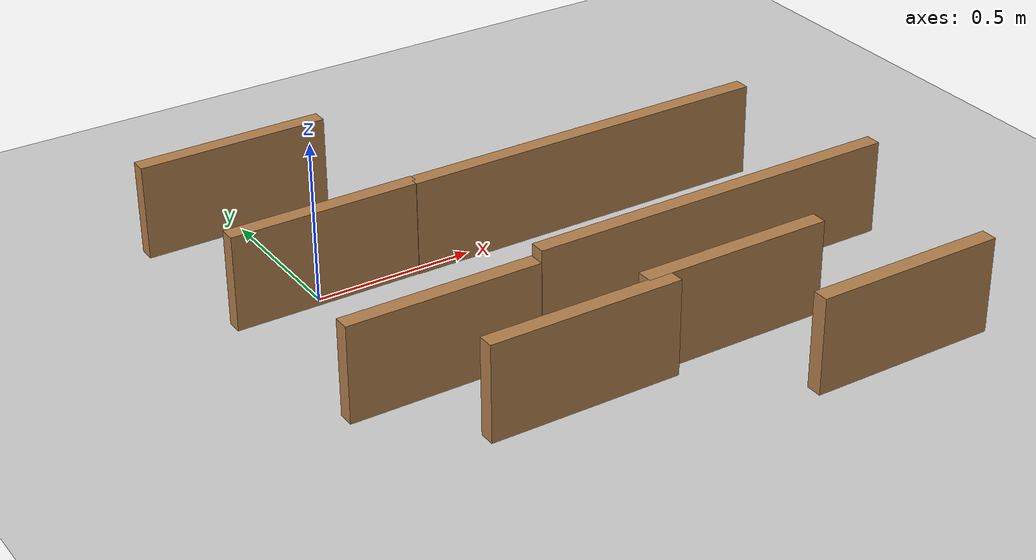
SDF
<sdf version="1.7">
 <world name="default">
  <light name="sun" type="directional">
   <pose>0 0 10 0 -0 0</pose>
   <diffuse>0.8 0.8 0.8 1</diffuse>
   <specular>0.2 0.2 0.2 1</specular>
   <attenuation>
    <range>1000</range>
    <constant>0.9</constant>
    <linear>0.01</linear>
    <quadratic>0.001</quadratic>
   </attenuation>
   <direction>-0.5 0.1 -0.9</direction>
   <spot><inner_angle>0</inner_angle><outer_angle>0</outer_angle><falloff>0</falloff></spot>
  </light>
  <model name="ground_plane">
   <static>1</static>
   <link name="link">
    <collision name="collision">
     <geometry><plane><normal>0 0 1</normal><size>100 100</size></plane></geometry>
     <surface>
      <contact><collide_bitmask>65535</collide_bitmask></contact>
      <friction><ode><mu>100</mu><mu2>50</mu2></ode></friction>
     </surface>
    </collision>
    <visual name="visual">
     <cast_shadows>0</cast_shadows>
     <geometry><plane><normal>0 0 1</normal><size>100 100</size></plane></geometry>
     <material>
      <script><uri>file://media/materials/scripts/gazebo.material</uri><name>Gazebo/Grey</name></script>
     </material>
    </visual>
   </link>
  </model>
  <gravity>0 0 -9.8</gravity>
  <magnetic_field>6e-06 2.3e-05 -4.2e-05</magnetic_field>
  <atmosphere type="adiabatic"/>
  <physics type="ode">
   <max_step_size>0.001</max_step_size>
   <real_time_factor>1</real_time_factor>
   <real_time_update_rate>1000</real_time_update_rate>
  </physics>
  <scene><ambient>0.4 0.4 0.4 1</ambient><background>0.7 0.7 0.7 1</background><shadows>1</shadows></scene>
  <audio><device>default</device></audio>
  <spherical_coordinates>
   <surface_model>EARTH_WGS84</surface_model>
   <latitude_deg>0</latitude_deg>
   <longitude_deg>0</longitude_deg>
   <elevation>0</elevation>
   <heading_deg>0</heading_deg>
  </spherical_coordinates>
  <model name="wall60cm_0">
   <pose>0.027917 -0.004563 0 0 -0 0</pose>
   <link name="Wall_4">
    <collision name="Wall_4_Collision">
     <geometry><box><size>0.6 0.05 0.3</size></box></geometry>
     <pose>0 0 0.15 0 -0 0</pose>
    </collision>
    <visual name="Wall_4_Visual">
     <pose>0 0 0.15 0 -0 0</pose>
     <geometry><box><size>0.6 0.05 0.3</size></box></geometry>
     <material>
      <script><uri>file://media/materials/scripts/gazebo.material</uri><name>Gazebo/Wood</name></script>
      <ambient>1 1 1 1</ambient>
     </material>
     <meta><layer>0</layer></meta>
    </visual>
   </link>
   <static>1</static>
  </model>
  <model name="wall120cm">
   <pose>0.916318 -0.006935 0 0 -0 0</pose>
   <link name="Wall_11">
    <collision name="Wall_11_Collision">
     <geometry><box><size>1.2 0.05 0.3</size></box></geometry>
     <pose>0 0 0.15 0 -0 0</pose>
    </collision>
    <visual name="Wall_11_Visual">
     <pose>0 0 0.15 0 -0 0</pose>
     <geometry><box><size>1.2 0.05 0.3</size></box></geometry>
     <material>
      <script><uri>file://media/materials/scripts/gazebo.material</uri><name>Gazebo/Wood</name></script>
      <ambient>1 1 1 1</ambient>
     </material>
     <meta><layer>0</layer></meta>
    </visual>
   </link>
   <static>1</static>
  </model>
  <model name="wall60cm_1">
   <pose>-0.008045 0.514902 0 0 -0 0</pose>
   <link name="Wall_4">
    <collision name="Wall_4_Collision">
     <geometry><box><size>0.6 0.05 0.3</size></box></geometry>
     <pose>0 0 0.15 0 -0 0</pose>
    </collision>
    <visual name="Wall_4_Visual">
     <pose>0 0 0.15 0 -0 0</pose>
     <geometry><box><size>0.6 0.05 0.3</size></box></geometry>
     <material>
      <script><uri>file://media/materials/scripts/gazebo.material</uri><name>Gazebo/Wood</name></script>
      <ambient>1 1 1 1</ambient>
     </material>
     <meta><layer>0</layer></meta>
    </visual>
   </link>
   <static>1</static>
  </model>
  <model name="wall120cm_0">
   <pose>1.00418 -0.534553 0 0 -0 0</pose>
   <link name="Wall_11">
    <collision name="Wall_11_Collision">
     <geometry><box><size>1.2 0.05 0.3</size></box></geometry>
     <pose>0 0 0.15 0 -0 0</pose>
    </collision>
    <visual name="Wall_11_Visual">
     <pose>0 0 0.15 0 -0 0</pose>
     <geometry><box><size>1.2 0.05 0.3</size></box></geometry>
     <material>
      <script><uri>file://media/materials/scripts/gazebo.material</uri><name>Gazebo/Wood</name></script>
      <ambient>1 1 1 1</ambient>
     </material>
     <meta><layer>0</layer></meta>
    </visual>
   </link>
   <static>1</static>
  </model>
  <model name="wall60cm">
   <pose>1.18641 -1.15786 0 0 -0 0</pose>
   <link name="Wall_4">
    <collision name="Wall_4_Collision">
     <geometry><box><size>0.6 0.05 0.3</size></box></geometry>
     <pose>0 0 0.15 0 -0 0</pose>
    </collision>
    <visual name="Wall_4_Visual">
     <pose>0 0 0.15 0 -0 0</pose>
     <geometry><box><size>0.6 0.05 0.3</size></box></geometry>
     <material>
      <script><uri>file://media/materials/scripts/gazebo.material</uri><name>Gazebo/Wood</name></script>
      <ambient>1 1 1 1</ambient>
     </material>
     <meta><layer>0</layer></meta>
    </visual>
   </link>
   <static>1</static>
  </model>
  <model name="wall60cm_2">
   <pose>0.856725 -0.824292 0 0 -0 0</pose>
   <link name="Wall_4">
    <collision name="Wall_4_Collision">
     <geometry><box><size>0.6 0.05 0.3</size></box></geometry>
     <pose>0 0 0.15 0 -0 0</pose>
    </collision>
    <visual name="Wall_4_Visual">
     <pose>0 0 0.15 0 -0 0</pose>
     <geometry><box><size>0.6 0.05 0.3</size></box></geometry>
     <material>
      <script><uri>file://media/materials/scripts/gazebo.material</uri><name>Gazebo/Wood</name></script>
      <ambient>1 1 1 1</ambient>
     </material>
     <meta><layer>0</layer></meta>
    </visual>
   </link>
   <static>1</static>
  </model>
  <model name="wall60cm_3">
   <pose>0.067241 -0.589662 0 0 -0 0</pose>
   <link name="Wall_4">
    <collision name="Wall_4_Collision">
     <geometry><box><size>0.6 0.05 0.3</size></box></geometry>
     <pose>0 0 0.15 0 -0 0</pose>
    </collision>
    <visual name="Wall_4_Visual">
     <pose>0 0 0.15 0 -0 0</pose>
     <geometry><box><size>0.6 0.05 0.3</size></box></geometry>
     <material>
      <script><uri>file://media/materials/scripts/gazebo.material</uri><name>Gazebo/Wood</name></script>
      <ambient>1 1 1 1</ambient>
     </material>
     <meta><layer>0</layer></meta>
    </visual>
   </link>
   <static>1</static>
  </model>
  <model name="wall60cm_4">
   <pose>0.330987 -0.868924 0 0 -0 0</pose>
   <link name="Wall_4">
    <collision name="Wall_4_Collision">
     <geometry><box><size>0.6 0.05 0.3</size></box></geometry>
     <pose>0 0 0.15 0 -0 0</pose>
    </collision>
    <visual name="Wall_4_Visual">
     <pose>0 0 0.15 0 -0 0</pose>
     <geometry><box><size>0.6 0.05 0.3</size></box></geometry>
     <material>
      <script><uri>file://media/materials/scripts/gazebo.material</uri><name>Gazebo/Wood</name></script>
      <ambient>1 1 1 1</ambient>
     </material>
     <meta><layer>0</layer></meta>
    </visual>
   </link>
   <static>1</static>
  </model>
 </world>
</sdf>
